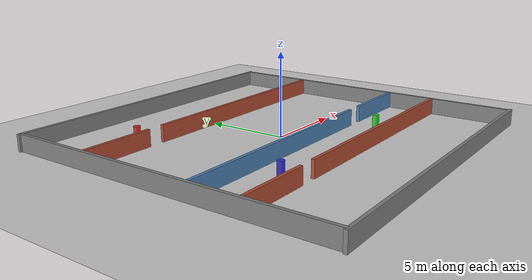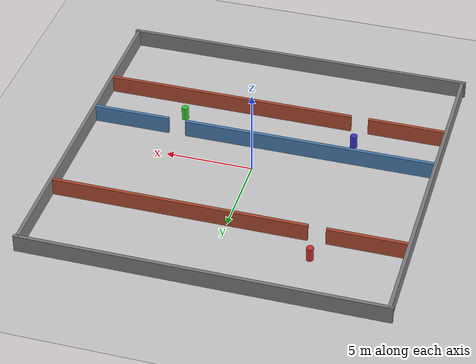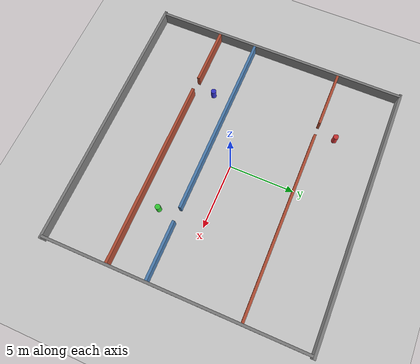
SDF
<?xml version="1.0" ?>
<sdf version="1.8">
  <world name="narrow_passage_world">
    <!-- Physics -->
    <physics name="4ms" type="ignored">
      <max_step_size>0.004</max_step_size>
      <real_time_factor>1.0</real_time_factor>
      <real_time_update_rate>250</real_time_update_rate>
    </physics>
    <plugin filename="gz-sim-physics-system" name="gz::sim::systems::Physics"/>
    <plugin filename="gz-sim-sensors-system" name="gz::sim::systems::Sensors">
      <render_engine>ogre2</render_engine>
    </plugin>
    <plugin filename="gz-sim-scene-broadcaster-system" name="gz::sim::systems::SceneBroadcaster"/>
    <plugin filename="gz-sim-user-commands-system" name="gz::sim::systems::UserCommands"/>

    <!-- Light -->
    <light type="directional" name="sun">
      <cast_shadows>true</cast_shadows>
      <pose>0 0 10 0 0 0</pose>
      <diffuse>0.8 0.8 0.8 1</diffuse>
      <specular>0.2 0.2 0.2 1</specular>
      <attenuation>
        <range>1000</range>
        <constant>0.9</constant>
        <linear>0.01</linear>
        <quadratic>0.001</quadratic>
      </attenuation>
      <direction>-0.5 0.1 -0.9</direction>
    </light>

    <!-- Ground Plane -->
    <model name="ground_plane">
      <static>true</static>
      <link name="link">
        <collision name="collision">
          <geometry><plane><normal>0 0 1</normal><size>100 100</size></plane></geometry>
        </collision>
        <visual name="visual">
          <geometry><plane><normal>0 0 1</normal><size>100 100</size></plane></geometry>
          <material>
            <ambient>0.8 0.8 0.8 1</ambient>
            <diffuse>0.8 0.8 0.8 1</diffuse>
          </material>
        </visual>
      </link>
    </model>

    <!-- ==================== OUTER WALLS (20m×20m) ==================== -->
    <model name="wall_north">
      <static>true</static>
      <pose>0 10 0.5 0 0 0</pose>
      <link name="link">
        <collision name="collision"><geometry><box><size>20.4 0.2 1.0</size></box></geometry></collision>
        <visual name="visual">
          <geometry><box><size>20.4 0.2 1.0</size></box></geometry>
          <material><ambient>0.5 0.5 0.5 1</ambient><diffuse>0.5 0.5 0.5 1</diffuse></material>
        </visual>
      </link>
    </model>
    <model name="wall_south">
      <static>true</static>
      <pose>0 -10 0.5 0 0 0</pose>
      <link name="link">
        <collision name="collision"><geometry><box><size>20.4 0.2 1.0</size></box></geometry></collision>
        <visual name="visual">
          <geometry><box><size>20.4 0.2 1.0</size></box></geometry>
          <material><ambient>0.5 0.5 0.5 1</ambient><diffuse>0.5 0.5 0.5 1</diffuse></material>
        </visual>
      </link>
    </model>
    <model name="wall_east">
      <static>true</static>
      <pose>10 0 0.5 0 0 0</pose>
      <link name="link">
        <collision name="collision"><geometry><box><size>0.2 20.0 1.0</size></box></geometry></collision>
        <visual name="visual">
          <geometry><box><size>0.2 20.0 1.0</size></box></geometry>
          <material><ambient>0.5 0.5 0.5 1</ambient><diffuse>0.5 0.5 0.5 1</diffuse></material>
        </visual>
      </link>
    </model>
    <model name="wall_west">
      <static>true</static>
      <pose>-10 0 0.5 0 0 0</pose>
      <link name="link">
        <collision name="collision"><geometry><box><size>0.2 20.0 1.0</size></box></geometry></collision>
        <visual name="visual">
          <geometry><box><size>0.2 20.0 1.0</size></box></geometry>
          <material><ambient>0.5 0.5 0.5 1</ambient><diffuse>0.5 0.5 0.5 1</diffuse></material>
        </visual>
      </link>
    </model>

    <!-- ==================== NARROW PASSAGE BARRIERS ==================== -->
    <!--
    3개의 수평 장벽, 각각 0.8m 간격으로 통과구멍
    장벽 y 좌표: +5, -2, -5
    스폰 (0,0)은 y=+5와 y=-2 사이 안전 영역
    통과구멍 위치를 좌우 교대로 배치 (S자 경로 유도)
    -->

    <!-- Barrier 1 (y=5): 왼쪽 통과구멍 (x=-5) -->
    <model name="barrier1_left">
      <static>true</static>
      <pose>-7.7 5 0.5 0 0 0</pose>
      <link name="link">
        <collision name="collision"><geometry><box><size>4.4 0.2 1.0</size></box></geometry></collision>
        <visual name="visual">
          <geometry><box><size>4.4 0.2 1.0</size></box></geometry>
          <material><ambient>0.7 0.3 0.2 1</ambient><diffuse>0.7 0.3 0.2 1</diffuse></material>
        </visual>
      </link>
    </model>
    <!-- 오른쪽 벽: gap at x=-5.0, width=0.8 -->
    <model name="barrier1_right">
      <static>true</static>
      <pose>2.7 5 0.5 0 0 0</pose>
      <link name="link">
        <collision name="collision"><geometry><box><size>14.4 0.2 1.0</size></box></geometry></collision>
        <visual name="visual">
          <geometry><box><size>14.4 0.2 1.0</size></box></geometry>
          <material><ambient>0.7 0.3 0.2 1</ambient><diffuse>0.7 0.3 0.2 1</diffuse></material>
        </visual>
      </link>
    </model>

    <!-- Barrier 2 (y=-2): 오른쪽 통과구멍 (x=5) -->
    <model name="barrier2_left">
      <static>true</static>
      <pose>-2.7 -2 0.5 0 0 0</pose>
      <link name="link">
        <collision name="collision"><geometry><box><size>14.4 0.2 1.0</size></box></geometry></collision>
        <visual name="visual">
          <geometry><box><size>14.4 0.2 1.0</size></box></geometry>
          <material><ambient>0.3 0.5 0.7 1</ambient><diffuse>0.3 0.5 0.7 1</diffuse></material>
        </visual>
      </link>
    </model>
    <model name="barrier2_right">
      <static>true</static>
      <pose>7.7 -2 0.5 0 0 0</pose>
      <link name="link">
        <collision name="collision"><geometry><box><size>4.4 0.2 1.0</size></box></geometry></collision>
        <visual name="visual">
          <geometry><box><size>4.4 0.2 1.0</size></box></geometry>
          <material><ambient>0.3 0.5 0.7 1</ambient><diffuse>0.3 0.5 0.7 1</diffuse></material>
        </visual>
      </link>
    </model>

    <!-- Barrier 3 (y=-5): 왼쪽 통과구멍 (x=-5) -->
    <model name="barrier3_left">
      <static>true</static>
      <pose>-7.7 -5 0.5 0 0 0</pose>
      <link name="link">
        <collision name="collision"><geometry><box><size>4.4 0.2 1.0</size></box></geometry></collision>
        <visual name="visual">
          <geometry><box><size>4.4 0.2 1.0</size></box></geometry>
          <material><ambient>0.7 0.3 0.2 1</ambient><diffuse>0.7 0.3 0.2 1</diffuse></material>
        </visual>
      </link>
    </model>
    <model name="barrier3_right">
      <static>true</static>
      <pose>2.7 -5 0.5 0 0 0</pose>
      <link name="link">
        <collision name="collision"><geometry><box><size>14.4 0.2 1.0</size></box></geometry></collision>
        <visual name="visual">
          <geometry><box><size>14.4 0.2 1.0</size></box></geometry>
          <material><ambient>0.7 0.3 0.2 1</ambient><diffuse>0.7 0.3 0.2 1</diffuse></material>
        </visual>
      </link>
    </model>

    <!-- ==================== ADDITIONAL OBSTACLES ==================== -->
    <!-- 통과구멍 부근 원기둥 장애물 (통과를 더 어렵게) -->
    <model name="pillar_1">
      <static>true</static>
      <pose>-5 6.5 0.4 0 0 0</pose>
      <link name="link">
        <collision name="collision"><geometry><cylinder><radius>0.2</radius><length>0.8</length></cylinder></geometry></collision>
        <visual name="visual">
          <geometry><cylinder><radius>0.2</radius><length>0.8</length></cylinder></geometry>
          <material><ambient>0.8 0.2 0.2 1</ambient><diffuse>0.8 0.2 0.2 1</diffuse></material>
        </visual>
      </link>
    </model>
    <model name="pillar_2">
      <static>true</static>
      <pose>5 -3.5 0.4 0 0 0</pose>
      <link name="link">
        <collision name="collision"><geometry><cylinder><radius>0.2</radius><length>0.8</length></cylinder></geometry></collision>
        <visual name="visual">
          <geometry><cylinder><radius>0.2</radius><length>0.8</length></cylinder></geometry>
          <material><ambient>0.2 0.8 0.2 1</ambient><diffuse>0.2 0.8 0.2 1</diffuse></material>
        </visual>
      </link>
    </model>
    <model name="pillar_3">
      <static>true</static>
      <pose>-5 -3.5 0.4 0 0 0</pose>
      <link name="link">
        <collision name="collision"><geometry><cylinder><radius>0.2</radius><length>0.8</length></cylinder></geometry></collision>
        <visual name="visual">
          <geometry><cylinder><radius>0.2</radius><length>0.8</length></cylinder></geometry>
          <material><ambient>0.2 0.2 0.8 1</ambient><diffuse>0.2 0.2 0.8 1</diffuse></material>
        </visual>
      </link>
    </model>

  </world>
</sdf>
